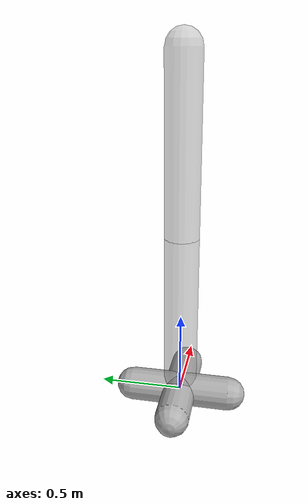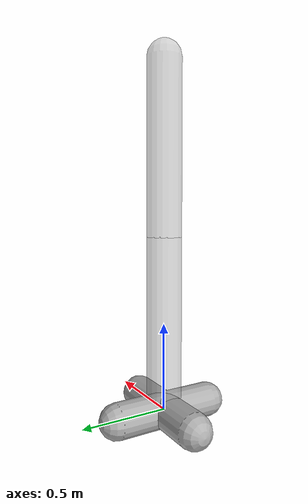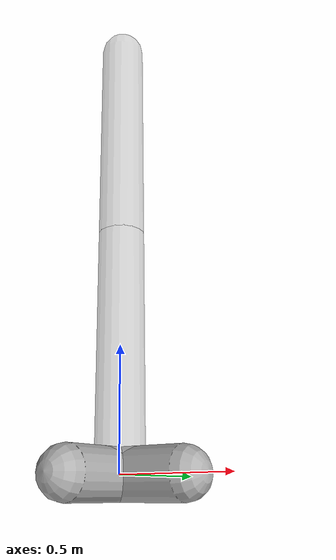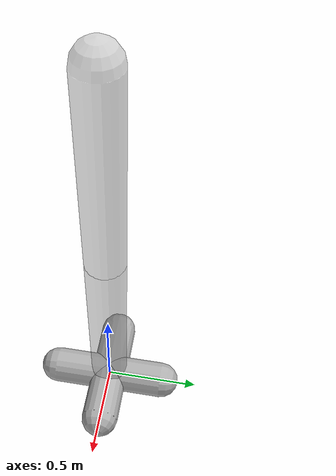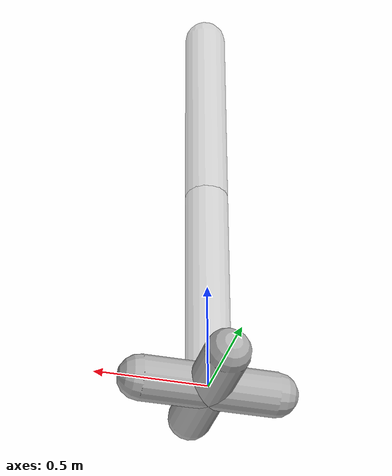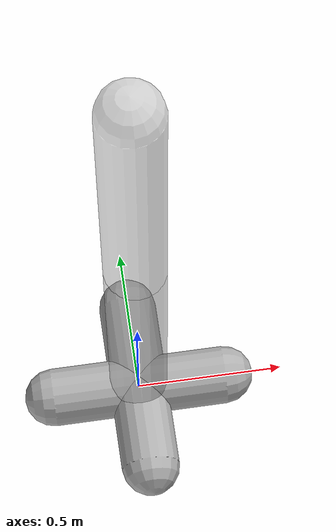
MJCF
<mujoco model="two_balljoints">
    <compiler angle="radian"/>
    <contact>
        <exclude body1="base_link" body2="link0"/>
    </contact>

    <worldbody>
        <body name="hand" pos="0 0 0" mocap="true">
            <geom name="hand" type="box" size=".02 .04 .06" rgba="0 .9 0 .5" contype="2" conaffinity="2"/>
        </body>

        <body name="target" pos="0 0 0" mocap="true">
            <geom name="target" type="sphere" size=".1 .2" rgba=".9 0 0 .5" contype="4" conaffinity="4"/>
        </body>

        <body name="base_link" pos="0 0 0">
            <geom name="base_link0" type="capsule" size=".1 .3" pos="0 0 0" rgba=".7 .7 .7 1" euler="1.57 0 0"/>
            <geom name="base_link1" type="capsule" size=".1 .3" pos="0 0 0" rgba=".7 .7 .7 1" euler="0 1.57 0"/>

            <body name="link0" pos="0 0 0">
                <joint name='joint0' type="ball" pos="0 0 0"/>
                <geom type="capsule" pos="0 0 .5" size=".1 .5" euler="0 0 0" rgba=".7 .7 .7 .5"/>

                <body name="link1" pos="0 0 1">
                    <joint name='joint1' type="ball" pos="0 0 0"/>
                    <geom type="capsule" pos="0 0 .5" size=".1 .5" euler="0 0 0" rgba=".7 .7 .7 .5"/>

                    <body name="EE" pos="0 0 1"/>
                </body>
            </body>
        </body>
    </worldbody>

    <actuator>
        <motor name="joint0_motor0" joint="joint0" gear="1 0 0 0 0 0"/>
        <motor name="joint0_motor1" joint="joint0" gear="0 1 0 0 0 0"/>
        <motor name="joint0_motor2" joint="joint0" gear="0 0 1 0 0 0"/>

        <motor name="joint1_motor0" joint="joint1" gear="1 0 0 0 0 0"/>
        <motor name="joint1_motor1" joint="joint1" gear="0 1 0 0 0 0"/>
        <motor name="joint1_motor2" joint="joint1" gear="0 0 1 0 0 0"/>
    </actuator>
</mujoco>
